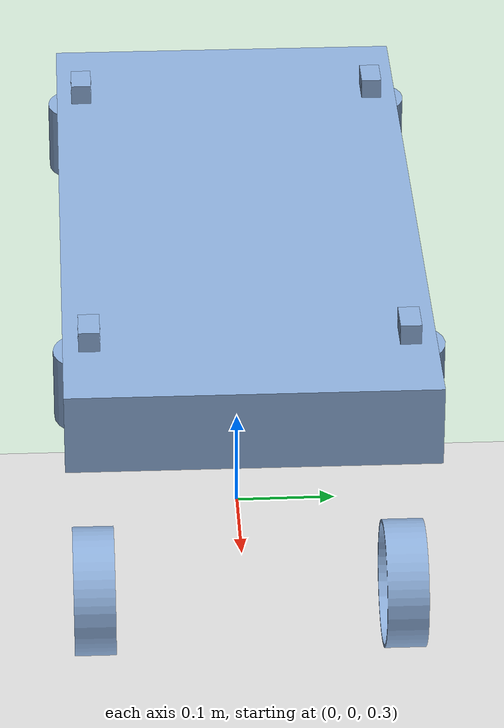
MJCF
<?xml version="1.0" encoding="utf-8"?>
<mujoco model="m4_morphobot">
  <compiler angle="radian" coordinate="local" meshdir="meshes" autolimits="true"/>
  <option timestep="0.002" integrator="implicitfast"/>
  <default>
    <joint damping="0.1" armature="0.01"/>
    <geom contype="0" conaffinity="1" friction="1.0 0.005 0.0001"/>
  </default>
  <asset>
    <mesh name="catalog_brackets_leg_segment__length-150" file="catalog_brackets_leg_segment__length-150.stl" scale="0.001 0.001 0.001"/>
    <mesh name="catalog_chassis_quadruped_body__height-80__hip_spacing_x-500__hip_spacing_y-300__length-700__width-350" file="catalog_chassis_quadruped_body__height-80__hip_spacing_x-500__hip_spacing_y-300__length-700__width-350.stl" scale="0.001 0.001 0.001"/>
    <mesh name="catalog_joints_joint_t2__gearbox-planetary-9-1__motor-t-motor-r60-kv115" file="catalog_joints_joint_t2__gearbox-planetary-9-1__motor-t-motor-r60-kv115.stl" scale="0.001 0.001 0.001"/>
    <mesh name="catalog_wheels_rotor_wheel__hub_radius-8__hub_thickness-10__prop_blade_length-55__shroud_height-40__shroud_radius-62.5" file="catalog_wheels_rotor_wheel__hub_radius-8__hub_thickness-10__prop_blade_length-55__shroud_height-40__shroud_radius-62.5.stl" scale="0.001 0.001 0.001"/>
  </asset>
  <worldbody>
    <geom name="ground" type="plane" size="10 10 0.1" contype="1" conaffinity="1" rgba="0.85 0.85 0.85 1"/>
    <body name="base" pos="0 0 0.600">
      <freejoint name="root"/>
      <inertial pos="0.000000 0.000000 0.000000" mass="2.416522" diaginertia="2.595748e-2 9.996347e-2 1.233433e-1"/>
      <geom name="base_geom" type="mesh" mesh="catalog_chassis_quadruped_body__height-80__hip_spacing_x-500__hip_spacing_y-300__length-700__width-350" mass="0" rgba="0.55 0.68 0.85 1"/>
      <body name="FL_roll_housing" pos="0.250000 0.150000 -0.040000">
        <joint name="FL_HIP_roll" type="hinge" range="-1.6000 1.6000" limited="true" axis="1.000000 0.000000 0.000000" pos="0 0 0" ref="0.000000"/>
        <inertial pos="0.000000 0.000000 0.000000" mass="0.080000" diaginertia="3.333333e-5 3.333333e-5 3.333333e-5"/>
        <geom name="FL_roll_housing_geom" type="mesh" mesh="catalog_joints_joint_t2__gearbox-planetary-9-1__motor-t-motor-r60-kv115" mass="0" rgba="0.55 0.68 0.85 1"/>
        <body name="FL_leg" pos="0.000000 0.000000 -0.050000">
          <joint name="FL_HIP_pitch" type="hinge" range="-1.6000 1.6000" limited="true" axis="0.000000 1.000000 0.000000" pos="0 0 0" ref="0.000000"/>
          <inertial pos="0.000000 0.000000 0.000000" mass="0.150000" diaginertia="5.200000e-4 5.200000e-4 4.000000e-5"/>
          <geom name="FL_leg_geom" type="mesh" mesh="catalog_brackets_leg_segment__length-150" mass="0" rgba="0.55 0.68 0.85 1"/>
          <body name="FL_rotor" pos="0.000000 0.000000 -0.150000">
            <joint name="FL_ROTOR_drive" type="hinge" limited="false" damping="0.001" armature="0.0001" axis="0.000000 1.000000 0.000000" pos="0 0 0"/>
            <inertial pos="0.000000 0.000000 0.000000" mass="0.064238" diaginertia="1.001624e-4 1.955740e-4 1.001624e-4"/>
            <geom name="FL_rotor_geom" type="mesh" mesh="catalog_wheels_rotor_wheel__hub_radius-8__hub_thickness-10__prop_blade_length-55__shroud_height-40__shroud_radius-62.5" mass="0" rgba="0.55 0.68 0.85 1"/>
          </body>
        </body>
      </body>
      <body name="FR_roll_housing" pos="0.250000 -0.150000 -0.040000">
        <joint name="FR_HIP_roll" type="hinge" range="-1.6000 1.6000" limited="true" axis="1.000000 0.000000 0.000000" pos="0 0 0" ref="0.000000"/>
        <inertial pos="0.000000 0.000000 0.000000" mass="0.080000" diaginertia="3.333333e-5 3.333333e-5 3.333333e-5"/>
        <geom name="FR_roll_housing_geom" type="mesh" mesh="catalog_joints_joint_t2__gearbox-planetary-9-1__motor-t-motor-r60-kv115" mass="0" rgba="0.55 0.68 0.85 1"/>
        <body name="FR_leg" pos="0.000000 0.000000 -0.050000">
          <joint name="FR_HIP_pitch" type="hinge" range="-1.6000 1.6000" limited="true" axis="0.000000 1.000000 0.000000" pos="0 0 0" ref="0.000000"/>
          <inertial pos="0.000000 0.000000 0.000000" mass="0.150000" diaginertia="5.200000e-4 5.200000e-4 4.000000e-5"/>
          <geom name="FR_leg_geom" type="mesh" mesh="catalog_brackets_leg_segment__length-150" mass="0" rgba="0.55 0.68 0.85 1"/>
          <body name="FR_rotor" pos="0.000000 0.000000 -0.150000">
            <joint name="FR_ROTOR_drive" type="hinge" limited="false" damping="0.001" armature="0.0001" axis="0.000000 1.000000 0.000000" pos="0 0 0"/>
            <inertial pos="0.000000 0.000000 0.000000" mass="0.064238" diaginertia="1.001624e-4 1.955740e-4 1.001624e-4"/>
            <geom name="FR_rotor_geom" type="mesh" mesh="catalog_wheels_rotor_wheel__hub_radius-8__hub_thickness-10__prop_blade_length-55__shroud_height-40__shroud_radius-62.5" mass="0" rgba="0.55 0.68 0.85 1"/>
          </body>
        </body>
      </body>
      <body name="RL_roll_housing" pos="-0.250000 0.150000 -0.040000">
        <joint name="RL_HIP_roll" type="hinge" range="-1.6000 1.6000" limited="true" axis="1.000000 0.000000 0.000000" pos="0 0 0" ref="0.000000"/>
        <inertial pos="0.000000 0.000000 0.000000" mass="0.080000" diaginertia="3.333333e-5 3.333333e-5 3.333333e-5"/>
        <geom name="RL_roll_housing_geom" type="mesh" mesh="catalog_joints_joint_t2__gearbox-planetary-9-1__motor-t-motor-r60-kv115" mass="0" rgba="0.55 0.68 0.85 1"/>
        <body name="RL_leg" pos="0.000000 0.000000 -0.050000">
          <joint name="RL_HIP_pitch" type="hinge" range="-1.6000 1.6000" limited="true" axis="0.000000 1.000000 0.000000" pos="0 0 0" ref="0.000000"/>
          <inertial pos="0.000000 0.000000 0.000000" mass="0.150000" diaginertia="5.200000e-4 5.200000e-4 4.000000e-5"/>
          <geom name="RL_leg_geom" type="mesh" mesh="catalog_brackets_leg_segment__length-150" mass="0" rgba="0.55 0.68 0.85 1"/>
          <body name="RL_rotor" pos="0.000000 0.000000 -0.150000">
            <joint name="RL_ROTOR_drive" type="hinge" limited="false" damping="0.001" armature="0.0001" axis="0.000000 1.000000 0.000000" pos="0 0 0"/>
            <inertial pos="0.000000 0.000000 0.000000" mass="0.064238" diaginertia="1.001624e-4 1.955740e-4 1.001624e-4"/>
            <geom name="RL_rotor_geom" type="mesh" mesh="catalog_wheels_rotor_wheel__hub_radius-8__hub_thickness-10__prop_blade_length-55__shroud_height-40__shroud_radius-62.5" mass="0" rgba="0.55 0.68 0.85 1"/>
          </body>
        </body>
      </body>
      <body name="RR_roll_housing" pos="-0.250000 -0.150000 -0.040000">
        <joint name="RR_HIP_roll" type="hinge" range="-1.6000 1.6000" limited="true" axis="1.000000 0.000000 0.000000" pos="0 0 0" ref="0.000000"/>
        <inertial pos="0.000000 0.000000 0.000000" mass="0.080000" diaginertia="3.333333e-5 3.333333e-5 3.333333e-5"/>
        <geom name="RR_roll_housing_geom" type="mesh" mesh="catalog_joints_joint_t2__gearbox-planetary-9-1__motor-t-motor-r60-kv115" mass="0" rgba="0.55 0.68 0.85 1"/>
        <body name="RR_leg" pos="0.000000 0.000000 -0.050000">
          <joint name="RR_HIP_pitch" type="hinge" range="-1.6000 1.6000" limited="true" axis="0.000000 1.000000 0.000000" pos="0 0 0" ref="0.000000"/>
          <inertial pos="0.000000 0.000000 0.000000" mass="0.150000" diaginertia="5.200000e-4 5.200000e-4 4.000000e-5"/>
          <geom name="RR_leg_geom" type="mesh" mesh="catalog_brackets_leg_segment__length-150" mass="0" rgba="0.55 0.68 0.85 1"/>
          <body name="RR_rotor" pos="0.000000 0.000000 -0.150000">
            <joint name="RR_ROTOR_drive" type="hinge" limited="false" damping="0.001" armature="0.0001" axis="0.000000 1.000000 0.000000" pos="0 0 0"/>
            <inertial pos="0.000000 0.000000 0.000000" mass="0.064238" diaginertia="1.001624e-4 1.955740e-4 1.001624e-4"/>
            <geom name="RR_rotor_geom" type="mesh" mesh="catalog_wheels_rotor_wheel__hub_radius-8__hub_thickness-10__prop_blade_length-55__shroud_height-40__shroud_radius-62.5" mass="0" rgba="0.55 0.68 0.85 1"/>
          </body>
        </body>
      </body>
    </body>
  </worldbody>
  <actuator>
    <motor name="FL_HIP_roll" joint="FL_HIP_roll" ctrlrange="-18.000 18.000" gear="1"/>
    <motor name="FL_HIP_pitch" joint="FL_HIP_pitch" ctrlrange="-18.000 18.000" gear="1"/>
    <motor name="FL_ROTOR_drive" joint="FL_ROTOR_drive" ctrlrange="-2.000 2.000" gear="1"/>
    <motor name="FR_HIP_roll" joint="FR_HIP_roll" ctrlrange="-18.000 18.000" gear="1"/>
    <motor name="FR_HIP_pitch" joint="FR_HIP_pitch" ctrlrange="-18.000 18.000" gear="1"/>
    <motor name="FR_ROTOR_drive" joint="FR_ROTOR_drive" ctrlrange="-2.000 2.000" gear="1"/>
    <motor name="RL_HIP_roll" joint="RL_HIP_roll" ctrlrange="-18.000 18.000" gear="1"/>
    <motor name="RL_HIP_pitch" joint="RL_HIP_pitch" ctrlrange="-18.000 18.000" gear="1"/>
    <motor name="RL_ROTOR_drive" joint="RL_ROTOR_drive" ctrlrange="-2.000 2.000" gear="1"/>
    <motor name="RR_HIP_roll" joint="RR_HIP_roll" ctrlrange="-18.000 18.000" gear="1"/>
    <motor name="RR_HIP_pitch" joint="RR_HIP_pitch" ctrlrange="-18.000 18.000" gear="1"/>
    <motor name="RR_ROTOR_drive" joint="RR_ROTOR_drive" ctrlrange="-2.000 2.000" gear="1"/>
  </actuator>
</mujoco>
